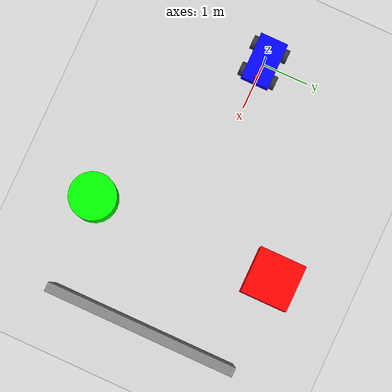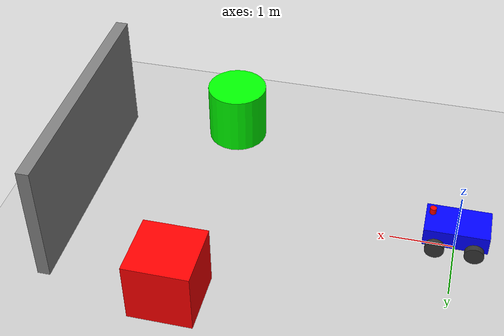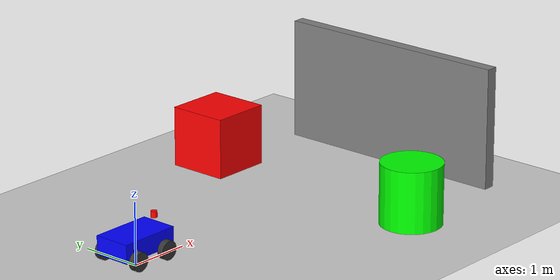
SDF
<?xml version="1.0" ?>
<sdf version="1.8">
    <world name="car_world">
        <physics name="1ms" type="ignored">
            <max_step_size>0.001</max_step_size>
            <real_time_factor>1.0</real_time_factor>
        </physics>

        <plugin filename="gz-sim-physics-system"
                name="gz::sim::systems::Physics">
        </plugin>
        <plugin filename="gz-sim-user-commands-system"
                name="gz::sim::systems::UserCommands">
        </plugin>
        <plugin filename="gz-sim-scene-broadcaster-system"
                name="gz::sim::systems::SceneBroadcaster">
        </plugin>
        <plugin filename="gz-sim-sensors-system"
                name="gz::sim::systems::Sensors">
            <render_engine>ogre2</render_engine>
        </plugin>

        <light type="directional" name="sun">
            <cast_shadows>true</cast_shadows>
            <pose>0 0 10 0 0 0</pose>
            <diffuse>0.8 0.8 0.8 1</diffuse>
            <specular>0.2 0.2 0.2 1</specular>
            <attenuation>
                <range>1000</range>
                <constant>0.9</constant>
                <linear>0.01</linear>
                <quadratic>0.001</quadratic>
            </attenuation>
            <direction>-0.5 0.1 -0.9</direction>
        </light>

        <model name="ground_plane">
            <static>true</static>
            <link name="link">
                <collision name="collision">
                    <geometry>
                        <plane>
                            <normal>0 0 1</normal>
                        </plane>
                    </geometry>
                    <surface>
                        <friction>
                            <ode>
                                <mu>1.0</mu>
                                <mu2>1.0</mu2>
                            </ode>
                        </friction>
                    </surface>
                </collision>
                <visual name="visual">
                    <geometry>
                        <plane>
                            <normal>0 0 1</normal>
                            <size>100 100</size>
                        </plane>
                    </geometry>
                    <material>
                        <ambient>0.8 0.8 0.8 1</ambient>
                        <diffuse>0.8 0.8 0.8 1</diffuse>
                        <specular>0.8 0.8 0.8 1</specular>
                    </material>
                </visual>
            </link>
        </model>

        <model name='vehicle_blue' canonical_link='chassis'>
            <pose relative_to='world'>0 0 0.4 0 0 0</pose>

            <link name='chassis'>
                <pose relative_to='__model__'>0 0 0 0 0 0</pose>
                <inertial>
                    <mass>5.0</mass>
                    <inertia>
                        <ixx>0.2</ixx>
                        <ixy>0</ixy>
                        <ixz>0</ixz>
                        <iyy>0.4</iyy>
                        <iyz>0</iyz>
                        <izz>0.4</izz>
                    </inertia>
                </inertial>
                <visual name='visual'>
                    <geometry>
                        <box>
                            <size>1.0 0.6 0.3</size>
                        </box>
                    </geometry>
                    <material>
                        <ambient>0.0 0.0 1.0 1</ambient>
                        <diffuse>0.0 0.0 1.0 1</diffuse>
                        <specular>0.0 0.0 1.0 1</specular>
                    </material>
                </visual>
                <collision name='collision'>
                    <geometry>
                        <box>
                            <size>1.0 0.6 0.3</size>
                        </box>
                    </geometry>
                </collision>
            </link>

            <link name='left_front_wheel'>
                <pose relative_to="chassis">0.3 0.35 -0.15 -1.5707 0 0</pose>
                <inertial>
                    <mass>0.5</mass>
                    <inertia>
                        <ixx>0.001</ixx>
                        <ixy>0</ixy>
                        <ixz>0</ixz>
                        <iyy>0.001</iyy>
                        <iyz>0</iyz>
                        <izz>0.001</izz>
                    </inertia>
                </inertial>
                <visual name='visual'>
                    <geometry>
                        <cylinder>
                            <radius>0.15</radius>
                            <length>0.1</length>
                        </cylinder>
                    </geometry>
                    <material>
                        <ambient>0.2 0.2 0.2 1</ambient>
                        <diffuse>0.2 0.2 0.2 1</diffuse>
                        <specular>0.2 0.2 0.2 1</specular>
                    </material>
                </visual>
                <collision name='collision'>
                    <geometry>
                        <cylinder>
                            <radius>0.15</radius>
                            <length>0.1</length>
                        </cylinder>
                    </geometry>
                    <surface>
                        <friction>
                            <ode>
                                <mu>1.0</mu>
                                <mu2>1.0</mu2>
                            </ode>
                        </friction>
                    </surface>
                </collision>
            </link>

            <link name='left_rear_wheel'>
                <pose relative_to="chassis">-0.3 0.35 -0.15 -1.5707 0 0</pose>
                <inertial>
                    <mass>0.1</mass>
                    <inertia>
                        <ixx>0.0003</ixx>
                        <ixy>0</ixy>
                        <ixz>0</ixz>
                        <iyy>0.0003</iyy>
                        <iyz>0</iyz>
                        <izz>0.0003</izz>
                    </inertia>
                </inertial>
                <visual name='visual'>
                    <geometry>
                        <cylinder>
                            <radius>0.15</radius>
                            <length>0.1</length>
                        </cylinder>
                    </geometry>
                    <material>
                        <ambient>0.2 0.2 0.2 1</ambient>
                        <diffuse>0.2 0.2 0.2 1</diffuse>
                        <specular>0.2 0.2 0.2 1</specular>
                    </material>
                </visual>
                <collision name='collision'>
                    <geometry>
                        <cylinder>
                            <radius>0.15</radius>
                            <length>0.1</length>
                        </cylinder>
                    </geometry>
                    <surface>
                        <friction>
                            <ode>
                                <mu>0.02</mu>
                                <mu2>0.02</mu2>
                            </ode>
                        </friction>
                    </surface>
                </collision>
            </link>

            <link name='right_front_wheel'>
                <pose relative_to="chassis">0.3 -0.35 -0.15 -1.5707 0 0</pose>
                <inertial>
                    <mass>0.5</mass>
                    <inertia>
                        <ixx>0.001</ixx>
                        <ixy>0</ixy>
                        <ixz>0</ixz>
                        <iyy>0.001</iyy>
                        <iyz>0</iyz>
                        <izz>0.001</izz>
                    </inertia>
                </inertial>
                <visual name='visual'>
                    <geometry>
                        <cylinder>
                            <radius>0.15</radius>
                            <length>0.1</length>
                        </cylinder>
                    </geometry>
                    <material>
                        <ambient>0.2 0.2 0.2 1</ambient>
                        <diffuse>0.2 0.2 0.2 1</diffuse>
                        <specular>0.2 0.2 0.2 1</specular>
                    </material>
                </visual>
                <collision name='collision'>
                    <geometry>
                        <cylinder>
                            <radius>0.15</radius>
                            <length>0.1</length>
                        </cylinder>
                    </geometry>
                    <surface>
                        <friction>
                            <ode>
                                <mu>1.0</mu>
                                <mu2>1.0</mu2>
                            </ode>
                        </friction>
                    </surface>
                </collision>
            </link>

            <link name='right_rear_wheel'>
                <pose relative_to="chassis">-0.3 -0.35 -0.15 -1.5707 0 0</pose>
                <inertial>
                    <mass>0.1</mass>
                    <inertia>
                        <ixx>0.0003</ixx>
                        <ixy>0</ixy>
                        <ixz>0</ixz>
                        <iyy>0.0003</iyy>
                        <iyz>0</iyz>
                        <izz>0.0003</izz>
                    </inertia>
                </inertial>
                <visual name='visual'>
                    <geometry>
                        <cylinder>
                            <radius>0.15</radius>
                            <length>0.1</length>
                        </cylinder>
                    </geometry>
                    <material>
                        <ambient>0.2 0.2 0.2 1</ambient>
                        <diffuse>0.2 0.2 0.2 1</diffuse>
                        <specular>0.2 0.2 0.2 1</specular>
                    </material>
                </visual>
                <collision name='collision'>
                    <geometry>
                        <cylinder>
                            <radius>0.15</radius>
                            <length>0.1</length>
                        </cylinder>
                    </geometry>
                    <surface>
                        <friction>
                            <ode>
                                <mu>0.02</mu>
                                <mu2>0.02</mu2>
                            </ode>
                        </friction>
                    </surface>
                </collision>
            </link>

            <joint name='left_front_wheel_joint' type='revolute'>
                <pose relative_to='left_front_wheel'/>
                <parent>chassis</parent>
                <child>left_front_wheel</child>
                <axis>
                    <xyz expressed_in='__model__'>0 1 0</xyz>
                    <limit>
                        <lower>-1e16</lower>
                        <upper>1e16</upper>
                    </limit>
                </axis>
            </joint>

            <joint name='left_rear_wheel_joint' type='revolute'>
                <pose relative_to='left_rear_wheel'/>
                <parent>chassis</parent>
                <child>left_rear_wheel</child>
                <axis>
                    <xyz expressed_in='__model__'>0 1 0</xyz>
                    <limit>
                        <lower>-1e16</lower>
                        <upper>1e16</upper>
                    </limit>
                </axis>
            </joint>

            <joint name='right_front_wheel_joint' type='revolute'>
                <pose relative_to='right_front_wheel'/>
                <parent>chassis</parent>
                <child>right_front_wheel</child>
                <axis>
                    <xyz expressed_in='__model__'>0 1 0</xyz>
                    <limit>
                        <lower>-1e16</lower>
                        <upper>1e16</upper>
                    </limit>
                </axis>
            </joint>

            <joint name='right_rear_wheel_joint' type='revolute'>
                <pose relative_to='right_rear_wheel'/>
                <parent>chassis</parent>
                <child>right_rear_wheel</child>
                <axis>
                    <xyz expressed_in='__model__'>0 1 0</xyz>
                    <limit>
                        <lower>-1e16</lower>
                        <upper>1e16</upper>
                    </limit>
                </axis>
            </joint>

            <plugin filename="gz-sim-diff-drive-system"
                    name="gz::sim::systems::DiffDrive">
                <left_joint>left_front_wheel_joint</left_joint>
                <right_joint>right_front_wheel_joint</right_joint>
                <wheel_separation>0.7</wheel_separation>
                <wheel_radius>0.15</wheel_radius>
                <odom_publish_frequency>50</odom_publish_frequency>
                <topic>cmd_vel</topic>
            </plugin>

            <link name='lidar_link'>
                <pose relative_to='chassis'>0.4 0 0.3 0 0 0</pose>
                <inertial>
                    <mass>0.1</mass>
                    <inertia>
                        <ixx>0.000166667</ixx>
                        <iyy>0.000166667</iyy>
                        <izz>0.000166667</izz>
                    </inertia>
                </inertial>
                <visual name='visual'>
                    <geometry>
                        <cylinder>
                            <radius>0.05</radius>
                            <length>0.1</length>
                        </cylinder>
                    </geometry>
                    <material>
                        <ambient>1 0 0 1</ambient>
                        <diffuse>1 0 0 1</diffuse>
                        <specular>1 0 0 1</specular>
                    </material>
                </visual>
                <sensor name='gpu_lidar' type='gpu_lidar'>
                    <topic>/lidar</topic>
                    <update_rate>10</update_rate>
                    <lidar>
                        <scan>
                            <horizontal>
                                <samples>640</samples>
                                <resolution>1</resolution>
                                <min_angle>-1.396263</min_angle>
                                <max_angle>1.396263</max_angle>
                            </horizontal>
                        </scan>
                        <range>
                            <min>0.08</min>
                            <max>10.0</max>
                            <resolution>0.01</resolution>
                        </range>
                    </lidar>
                    <visualize>true</visualize>
                </sensor>
            </link>

            <joint name='lidar_joint' type='fixed'>
                <parent>chassis</parent>
                <child>lidar_link</child>
            </joint>
        </model>

        <model name='red_box'>
            <pose>4 2 0.5 0 0 0</pose>
            <static>true</static>
            <link name='link'>
                <visual name='visual'>
                    <geometry>
                        <box>
                            <size>1 1 1</size>
                        </box>
                    </geometry>
                    <material>
                        <ambient>1 0 0 1</ambient>
                        <diffuse>1 0 0 1</diffuse>
                        <specular>1 0 0 1</specular>
                    </material>
                </visual>
                <collision name='collision'>
                    <geometry>
                        <box>
                            <size>1 1 1</size>
                        </box>
                    </geometry>
                </collision>
            </link>
        </model>

        <model name='green_cylinder'>
            <pose>4 -2 0.5 0 0 0</pose>
            <static>true</static>
            <link name='link'>
                <visual name='visual'>
                    <geometry>
                        <cylinder>
                            <radius>0.5</radius>
                            <length>1.0</length>
                        </cylinder>
                    </geometry>
                    <material>
                        <ambient>0 1 0 1</ambient>
                        <diffuse>0 1 0 1</diffuse>
                        <specular>0 1 0 1</specular>
                    </material>
                </visual>
                <collision name='collision'>
                    <geometry>
                        <cylinder>
                            <radius>0.5</radius>
                            <length>1.0</length>
                        </cylinder>
                    </geometry>
                </collision>
            </link>
        </model>

        <model name='gray_wall'>
            <pose>6 0 1 0 0 0</pose>
            <static>true</static>
            <link name='link'>
                <visual name='visual'>
                    <geometry>
                        <box>
                            <size>0.2 4 2</size>
                        </box>
                    </geometry>
                    <material>
                        <ambient>0.5 0.5 0.5 1</ambient>
                        <diffuse>0.5 0.5 0.5 1</diffuse>
                        <specular>0.5 0.5 0.5 1</specular>
                    </material>
                </visual>
                <collision name='collision'>
                    <geometry>
                        <box>
                            <size>0.2 4 2</size>
                        </box>
                    </geometry>
                </collision>
            </link>
        </model>

    </world>
</sdf>
